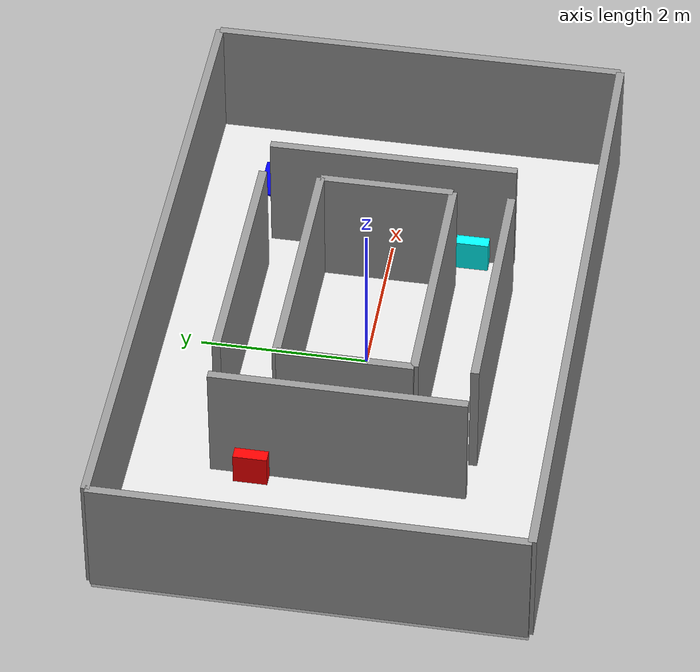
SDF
<sdf version="1.7">
 <world name="mission_maze_world">
  <plugin filename="gz-sim-physics-system" name="gz::sim::systems::Physics"/>
  <plugin filename="gz-sim-user-commands-system" name="gz::sim::systems::UserCommands"/>
  <plugin filename="gz-sim-scene-broadcaster-system" name="gz::sim::systems::SceneBroadcaster"/>
  <plugin filename="gz-sim-sensors-system" name="gz::sim::systems::Sensors">
   <render_engine>ogre2</render_engine>
  </plugin>
  <model name="floor">
   <static>true</static>
   <link name="link">
    <collision name="collision"><geometry><box><size>8 5 0.1</size></box></geometry></collision>
    <visual name="visual">
     <geometry><box><size>8 5 0.1</size></box></geometry>
     <material><ambient>0.9 0.9 0.9 1</ambient><diffuse>0.9 0.9 0.9 1</diffuse></material>
    </visual>
   </link>
   <pose>0 0 -0.05 0 0 0</pose>
  </model>
  <model name="north_wall">
   <static>true</static>
   <link name="link">
    <collision name="collision"><geometry><box><size>8 0.1 1.5</size></box></geometry></collision>
    <visual name="visual">
     <geometry><box><size>8 0.1 1.5</size></box></geometry>
     <material><ambient>0.6 0.6 0.6 1</ambient></material>
    </visual>
   </link>
   <pose>0 2.5 0.75 0 0 0</pose>
  </model>
  <model name="south_wall">
   <static>true</static>
   <link name="link">
    <collision name="collision"><geometry><box><size>8 0.1 1.5</size></box></geometry></collision>
    <visual name="visual">
     <geometry><box><size>8 0.1 1.5</size></box></geometry>
     <material><ambient>0.6 0.6 0.6 1</ambient></material>
    </visual>
   </link>
   <pose>0 -2.5 0.75 0 0 0</pose>
  </model>
  <model name="east_wall">
   <static>true</static>
   <link name="link">
    <collision name="collision"><geometry><box><size>0.1 5 1.5</size></box></geometry></collision>
    <visual name="visual">
     <geometry><box><size>0.1 5 1.5</size></box></geometry>
     <material><ambient>0.6 0.6 0.6 1</ambient></material>
    </visual>
   </link>
   <pose>4 0 0.75 0 0 0</pose>
  </model>
  <model name="west_wall">
   <static>true</static>
   <link name="link">
    <collision name="collision"><geometry><box><size>0.1 5 1.5</size></box></geometry></collision>
    <visual name="visual">
     <geometry><box><size>0.1 5 1.5</size></box></geometry>
     <material><ambient>0.6 0.6 0.6 1</ambient></material>
    </visual>
   </link>
   <pose>-4 0 0.75 0 0 0</pose>
  </model>
  <model name="unknown_top">
   <static>true</static>
   <link name="link">
    <collision name="collision"><geometry><box><size>3 0.1 1.5</size></box></geometry></collision>
    <visual name="visual">
     <geometry><box><size>3 0.1 1.5</size></box></geometry>
     <material><ambient>0.6 0.6 0.6 1</ambient></material>
    </visual>
   </link>
   <pose>0 0.8 0.75 0 0 0</pose>
  </model>
  <model name="unknown_bottom">
   <static>true</static>
   <link name="link">
    <collision name="collision"><geometry><box><size>3 0.1 1.5</size></box></geometry></collision>
    <visual name="visual">
     <geometry><box><size>3 0.1 1.5</size></box></geometry>
     <material><ambient>0.6 0.6 0.6 1</ambient></material>
    </visual>
   </link>
   <pose>0 -0.8 0.75 0 0 0</pose>
  </model>
  <model name="unknown_left">
   <static>true</static>
   <link name="link">
    <collision name="collision"><geometry><box><size>0.1 1.6 1.5</size></box></geometry></collision>
    <visual name="visual">
     <geometry><box><size>0.1 1.6 1.5</size></box></geometry>
     <material><ambient>0.6 0.6 0.6 1</ambient></material>
    </visual>
   </link>
   <pose>-1.5 0 0.75 0 0 0</pose>
  </model>
  <model name="unknown_right">
   <static>true</static>
   <link name="link">
    <collision name="collision"><geometry><box><size>0.1 1.6 1.5</size></box></geometry></collision>
    <visual name="visual">
     <geometry><box><size>0.1 1.6 1.5</size></box></geometry>
     <material><ambient>0.6 0.6 0.6 1</ambient></material>
    </visual>
   </link>
   <pose>1.5 0 0.75 0 0 0</pose>
  </model>
  <model name="corridor_1">
   <static>true</static>
   <link name="link">
    <collision name="collision"><geometry><box><size>0.1 3 1.5</size></box></geometry></collision>
    <visual name="visual">
     <geometry><box><size>0.1 3 1.5</size></box></geometry>
     <material><ambient>0.6 0.6 0.6 1</ambient></material>
    </visual>
   </link>
   <pose>-2 0 0.75 0 0 0</pose>
  </model>
  <model name="corridor_2">
   <static>true</static>
   <link name="link">
    <collision name="collision"><geometry><box><size>0.1 3 1.5</size></box></geometry></collision>
    <visual name="visual">
     <geometry><box><size>0.1 3 1.5</size></box></geometry>
     <material><ambient>0.6 0.6 0.6 1</ambient></material>
    </visual>
   </link>
   <pose>2 0 0.75 0 0 0</pose>
  </model>
  <model name="corridor_3">
   <static>true</static>
   <link name="link">
    <collision name="collision"><geometry><box><size>3 0.1 1.5</size></box></geometry></collision>
    <visual name="visual">
     <geometry><box><size>3 0.1 1.5</size></box></geometry>
     <material><ambient>0.6 0.6 0.6 1</ambient></material>
    </visual>
   </link>
   <pose>0 1.5 0.75 0 0 0</pose>
  </model>
  <model name="corridor_4">
   <static>true</static>
   <link name="link">
    <collision name="collision"><geometry><box><size>3 0.1 1.5</size></box></geometry></collision>
    <visual name="visual">
     <geometry><box><size>3 0.1 1.5</size></box></geometry>
     <material><ambient>0.6 0.6 0.6 1</ambient></material>
    </visual>
   </link>
   <pose>0 -1.5 0.75 0 0 0</pose>
  </model>
  <model name="start_zone">
   <static>true</static>
   <link name="link">
    <visual name="visual">
     <geometry><box><size>0.6 0.6 0.02</size></box></geometry>
     <material><ambient>0 1 0 1</ambient></material>
    </visual>
   </link>
   <pose>-3 -1.5 0.01 0 0 0</pose>
  </model>
  <model name="end_zone">
   <static>true</static>
   <link name="link">
    <visual name="visual">
     <geometry><box><size>0.6 0.6 0.02</size></box></geometry>
     <material><ambient>0 0 1 1</ambient></material>
    </visual>
   </link>
   <pose>3 1.5 0.01 0 0 0</pose>
  </model>
  <model name="station_A">
   <static>true</static>
   <link name="link">
    <visual name="visual">
     <geometry><box><size>0.4 0.4 0.4</size></box></geometry>
     <material><ambient>1 0 0 1</ambient></material>
    </visual>
   </link>
   <pose>-2 1 0.2 0 0 0</pose>
  </model>
  <model name="station_B">
   <static>true</static>
   <link name="link">
    <visual name="visual">
     <geometry><box><size>0.4 0.4 0.4</size></box></geometry>
     <material><ambient>0 1 1 1</ambient></material>
    </visual>
   </link>
   <pose>2 -1 0.2 0 0 0</pose>
  </model>
  <model name="station_C">
   <static>true</static>
   <link name="link">
    <visual name="visual">
     <geometry><box><size>0.4 0.4 0.4</size></box></geometry>
     <material><ambient>1 0 1 1</ambient></material>
    </visual>
   </link>
   <pose>3 0 0.2 0 0 0</pose>
  </model>
  <light name="sun" type="directional">
   <pose>0 0 10 0 0 0</pose>
   <diffuse>0.8 0.8 0.8 1</diffuse>
   <direction>-0.5 0.1 -0.9</direction>
  </light>
 </world>
</sdf>
